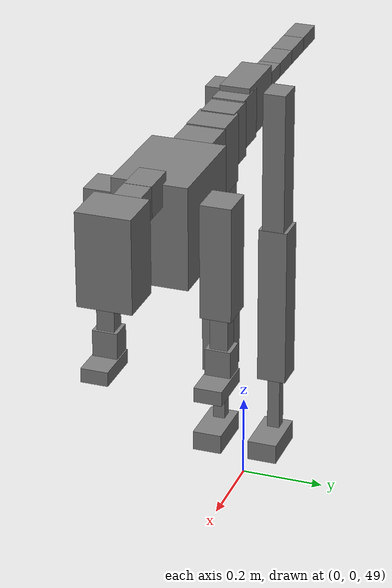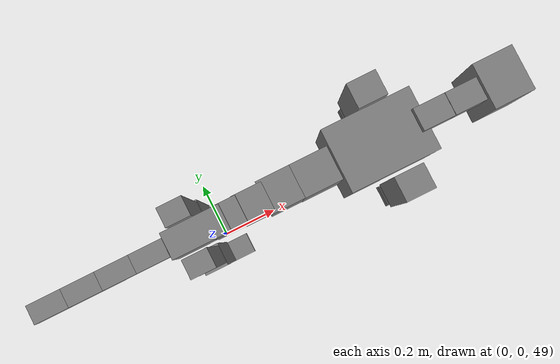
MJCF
<mujoco model="dog">

    <default>
        <joint armature="0.02" stiffness="1" damping="0.2" limited="true"/>
        <geom condim="3" friction="1 0.05 0.05" margin="0.01"/>
        <motor ctrllimited="true" ctrlrange="-1.0 1.0" forcelimited="true" gear="50"/>
    </default>

    <compiler inertiafromgeom="true" angle="radian"/>

    <option timestep="0.016" iterations="50" tolerance="1e-10" solver="Newton" jacobian="dense" cone="pyramidal"/>

    <size nconmax="20000" njmax="60000" nstack="5000000"/>
    <visual>
        <map force="0.1" zfar="30"/>
        <rgba haze="0.15 0.25 0.35 1"/>
        <quality shadowsize="2048"/>
        <global offwidth="800" offheight="800"/>
    </visual>

    <asset>
        <texture type="skybox" builtin="gradient" rgb1="0.3 0.5 0.7" rgb2="0 0 0" width="512" height="512"/>
        <texture name="texplane" type="2d" builtin="checker" rgb1=".2 .3 .4" rgb2=".1 0.15 0.2" width="512" height="512"
                 mark="cross" markrgb=".8 .8 .8"/>
        <texture name="texgeom" type="cube" builtin="flat" mark="cross" width="127" height="1278" rgb1="0.8 0.6 0.4"
                 rgb2="0.8 0.6 0.4" markrgb="1 1 1" random="0.01"/>

        <material name="matplane" reflectance="0.3" texture="texplane" texrepeat="1 1" texuniform="true"/>
        <material name="matgeom" texture="texgeom" texuniform="true" rgba="0.8 0.6 .4 1"/>
    </asset>

    <worldbody>
        <geom name="floor" pos="0 0 0" size="0 0 .25" type="plane" material="matplane" condim="3"/>

        <light directional="false" diffuse=".2 .2 .2" specular="0 0 0" pos="0 0 5" dir="0 0 -1" castshadow="false"/>
        <light mode="targetbodycom" target="torso" directional="false" diffuse=".8 .8 .8" specular="0.3 0.3 0.3"
               pos="0 0 4.0" dir="0 0 -1"/>

        <body name="root" pos="0 0 50">
            <freejoint name="root_1"/>
            <geom type="box" pos="0 0 -0.02" size="0.0774  0.0358  0.063" density="2030"/>

            <body name="spine1" pos="0.054 0 0">
                <joint name="spine1_y" axis="0 1 0" range="0 0.7" limited="true"/>
                <geom type="box" pos="0.02375 0 -0.03" size="0.04375  0.0375  0.05985" density="2030"/>

                <body name="spine2" pos="0.0612 0 0">
                    <joint name="spine2_y" axis="0 1 0" range="-0.15 0.15" limited="true"/>
                    <geom type="box" pos="0.03555  0  -0.04" size="0.04055  0.039  0.06615" density="2030"/>

                    <body name="spine3" pos="0.0730 0 0">
                        <joint name="spine3_y" axis="0 1 0" range="-0.15 0.15" limited="true"/>
                        <geom type="box" pos="0.03555  0  -0.057" size="0.04555  0.0445  0.081" density="2030"/>

                        <body name="spine4" pos="0.0780 0 0">
                            <joint name="spine4_y" axis="0 1 0" range="-0.15 0.15" limited="true"/>
                            <geom type="box" pos="0.05265  0  -0.07" size="0.05265  0.045  0.09135" density="2030"/>

                            <body name="torso" pos="0.1082 0 0">
                                <joint name="torso_y" axis="0 1 0" range="-0.15 0.15" limited="true"/>
                                <geom type="box" pos="0.11925  0  -0.085" size="0.11925  0.085  0.11745"
                                      density="2030"/>

                                <body name="neck1" pos="0.2160  0   0.0180">
                                    <joint name="neck1_y" axis="0 1 0" range="-1.2  -1" limited="true"/>
                                    <geom type="box" pos="0.0423  0  0" size="0.0423  0.03  0.036" density="2325"/>

                                    <body name="neck2" pos="0.0853  0  0">
                                        <joint name="neck2_y" axis="0 1 0" range="0.1  0" limited="true"/>
                                        <geom type="box" pos="0.0423  0  0" size="0.0423  0.03  0.036" density="2325"/>

                                        <body name="head" pos="0.0853  0  0">
                                            <joint name="head_y" axis="0 1 0" range="-0.3  -0.2" limited="true"/>
                                            <geom type="box" pos="0.0531  0  -0.055" size="0.0531  0.06  0.1044"
                                                  density="4030"/>

                                        </body>
                                    </body>
                                </body>

                                <body name="front_shoulder" pos="0.156  0   -0.0480">
                                    <joint name="front_shoulder_y" axis="0 1 0" range="-1 1.5" limited="true"/>
                                    <geom type="box" pos="0 0.13 -0.1047" size="0.0410  0.0351  0.1314" density="1158"/>
                                    <geom type="box" pos="0 -0.13 -0.1047" size="0.0410  0.0351  0.1314"
                                          density="1158"/>

                                    <body name="front_elbow" pos="0  0  -0.2095">
                                        <joint name="front_elbow_y" axis="0 1 0" range="-2 0" limited="true"/>
                                        <geom type="box" pos="0 0.13 -0.0602" size="0.0199  0.0204  0.0602"
                                              density="1081"/>
                                        <geom type="box" pos="0 -0.13 -0.0602" size="0.0199  0.0204  0.0602"
                                              density="1081"/>

                                        <body name="front_wrist" pos="0  0  -0.1203">
                                            <joint name="front_wrist_y" axis="0 1 0" range="-0.2 0" limited="true"/>
                                            <geom type="box" pos="0 0.13 -0.0319" size="0.0261  0.0290  0.0450"
                                                  density="1664"/>
                                            <geom type="box" pos="0 -0.13 -0.0319" size="0.0261  0.0290  0.0450"
                                                  density="1664"/>

                                            <body name="front_finger_end" pos="0  0  -0.0638">
                                                <joint name="front_finger_y" axis="0 1 0" range="-0.4 1"
                                                       limited="true"/>
                                                <geom type="box" pos="0.0316  0.13  -0.0019"
                                                      size="0.0580  0.0316  0.0169" density="1515"/>
                                                <geom type="box" pos="0.0316  -0.13  -0.0019"
                                                      size="0.0580  0.0316  0.0169" density="1515"/>

                                            </body>

                                        </body>
                                    </body>
                                </body>

                            </body>
                        </body>
                    </body>
                </body>
            </body>

            <body name="back_hip" pos="-0.03 0 -0.018">
                <joint name="back_hip_y" axis="0 1 0" range="-1.5 0.3" limited="true"/>
                <geom type="box" pos="0 0.07 -0.1677" size="0.0342  0.0269  0.1905" density="1154"/>
                <geom type="box" pos="0 -0.07 -0.1677" size="0.0342  0.0269  0.1905" density="1154"/>

                <body name="back_knee" pos="0  0  -0.3354">
                    <joint name="back_knee_y" axis="0 1 0" range="0 2.8" limited="true"/>
                    <geom type="box" pos="0 0.07 -0.1819" size="0.0354  0.0349  0.1974" density="1227"/>
                    <geom type="box" pos="0 -0.07 -0.1819" size="0.0354  0.0349  0.1974" density="1227"/>

                    <body name="back_ankle" pos="0  0  -0.3638">
                        <joint name="back_ankle_y" axis="0 1 0" range="-2.2 0" limited="true"/>
                        <geom type="box" pos="0 0.07 -0.0839" size="0.0150  0.0150  0.0952" density="1284"/>
                        <geom type="box" pos="0 -0.07 -0.0839" size="0.0150  0.0150  0.0952" density="1284"/>

                        <body name="back_toe_end" pos="0  0  -0.1678">
                            <joint name="back_toe_y" axis="0 1 0" range="-0.4 1" limited="true"/>
                            <geom type="box" pos="0.0358  0.07  -0.0093" size="0.0657  0.0358  0.0243" density="1515"/>
                            <geom type="box" pos="0.0358  -0.07  -0.0093" size="0.0657  0.0358  0.0243" density="1515"/>

                        </body>
                    </body>
                </body>
            </body>

            <body name="tail1" pos="-0.074 0 -0.006">
                <joint name="tail1_y" axis="0 1 0" range="-0.2 0.2" limited="true"/>
                <geom type="box" pos="-0.0536  0  0" size="0.045  0.025  0.0175" density="1587"/>

                <body name="tail2" pos="-0.09 0 0">
                    <joint name="tail2_y" axis="0 1 0" range="-0.2 0.2" limited="true"/>
                    <geom type="box" pos="-0.0536  0  0" size="0.045  0.025  0.0175" density="1587"/>

                    <body name="tail3" pos="-0.09 0 0">
                        <joint name="tail3_y" axis="0 1 0" range="-0.2 0.2" limited="true"/>
                        <geom type="box" pos="-0.0536  0  0" size="0.045  0.025  0.0175" density="1587"/>

                        <body name="tail4" pos="-0.09 0 0">
                            <joint name="tail4_y" axis="0 1 0" range="-0.2 0.2" limited="true"/>
                            <geom type="box" pos="-0.0536  0  0" size="0.045  0.025  0.0175" density="1587"/>

                        </body>
                    </body>
                </body>
            </body>
        </body>
    </worldbody>

    <actuator>
        <motor joint="spine1_y" forcerange="-150 150     "/>
        <motor joint="spine2_y" forcerange="-150 150     "/>
        <motor joint="spine3_y" forcerange="-150 150     "/>
        <motor joint="spine4_y" forcerange="-150 150     "/>
        <motor joint="torso_y" forcerange="-150 150     "/>
        <motor joint="neck1_y" forcerange="-100 100       "/>
        <motor joint="neck2_y" forcerange="-100 100       "/>
        <motor joint="head_y" forcerange="-150 150       "/>
        <motor joint="front_shoulder_y" forcerange="-134.46 199.26"/>
        <motor joint="front_elbow_y" forcerange="-125.32 122.69"/>
        <motor joint="front_wrist_y" forcerange="-140.81 91.55"/>
        <motor joint="front_finger_y" forcerange="-93.01 35.77"/>
        <motor joint="back_hip_y" forcerange="-325.46 232.58"/>
        <motor joint="back_knee_y" forcerange="-373.07 334.63"/>
        <motor joint="back_angle_y" forcerange="-83.13 57.14"/>
        <motor joint="back_toe_y" forcerange="-69.33 137.17"/>
        <motor joint="tail1_y" forcerange="-50 50     "/>
        <motor joint="tail2_y" forcerange="-50 50     "/>
        <motor joint="tail3_y" forcerange="-50 50     "/>
        <motor joint="tail4_y" forcerange="-50 50     "/>
    </actuator>
</mujoco>
